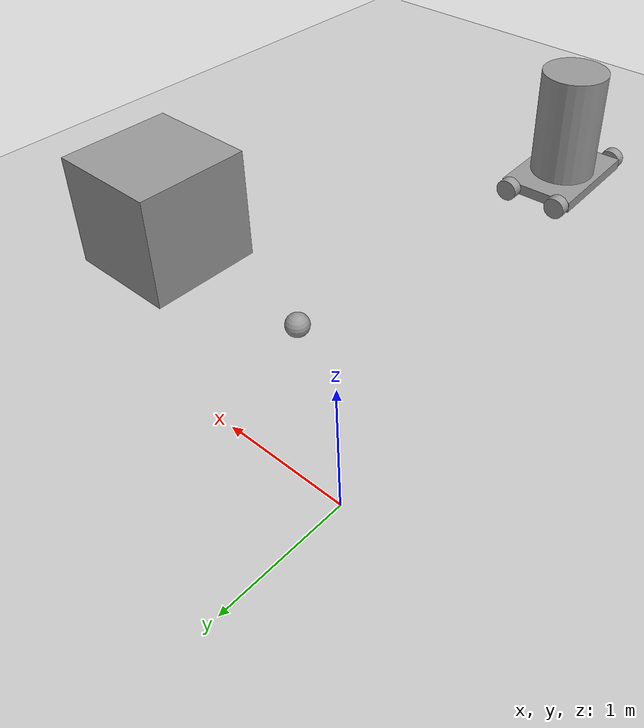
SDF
<sdf version="1.6">
 <world name="default">
  <model name="ground_plane">
   <static>1</static>
   <link name="link">
    <collision name="collision">
     <geometry><plane><normal>0 0 1</normal><size>100 100</size></plane></geometry>
     <surface>
      <contact><collide_bitmask>65535</collide_bitmask></contact>
      <friction><ode><mu>100</mu><mu2>50</mu2></ode></friction>
     </surface>
    </collision>
    <visual name="visual">
     <cast_shadows>0</cast_shadows>
     <geometry><plane><normal>0 0 1</normal><size>100 100</size></plane></geometry>
     <material>
      <script><uri>file://media/materials/scripts/gazebo.material</uri><name>Gazebo/Grey</name></script>
     </material>
    </visual>
   </link>
  </model>
  <model name="project_robot_clone">
   <link name="link_2">
    <pose>0 0 0.1 0 -0 0</pose>
    <inertial>
     <mass>1</mass>
     <inertia>
      <ixx>0.166667</ixx>
      <ixy>0</ixy>
      <ixz>0</ixz>
      <iyy>0.166667</iyy>
      <iyz>0</iyz>
      <izz>0.166667</izz>
     </inertia>
    </inertial>
    <visual name="visual">
     <geometry><box><size>0.7 1 0.1</size></box></geometry>
     <material>
      <lighting>1</lighting>
      <script><uri>file://media/materials/scripts/gazebo.material</uri><name>Gazebo/Grey</name></script>
      <shader type="pixel"><normal_map>__default__</normal_map></shader>
      <ambient>0.3 0.3 0.3 1</ambient>
      <diffuse>0.7 0.7 0.7 1</diffuse>
      <specular>0.01 0.01 0.01 1</specular>
      <emissive>0 0 0 1</emissive>
     </material>
    </visual>
    <collision name="collision">
     <geometry><box><size>0.7 1 0.1</size></box></geometry>
     <surface>
      <friction>
       <ode><mu>1</mu><mu2>1</mu2><fdir1>0 0 0</fdir1><slip1>0</slip1><slip2>0</slip2></ode>
       <torsional>
        <coefficient>1</coefficient>
        <patch_radius>0</patch_radius>
        <surface_radius>0</surface_radius>
        <use_patch_radius>1</use_patch_radius>
        <ode><slip>0</slip></ode>
       </torsional>
      </friction>
      <bounce><restitution_coefficient>0</restitution_coefficient><threshold>1e+06</threshold></bounce>
      <contact>
       <collide_without_contact>0</collide_without_contact>
       <collide_without_contact_bitmask>1</collide_without_contact_bitmask>
       <collide_bitmask>1</collide_bitmask>
       <ode>
        <soft_cfm>0</soft_cfm>
        <soft_erp>0.2</soft_erp>
        <kp>1e+13</kp>
        <kd>1</kd>
        <max_vel>0.01</max_vel>
        <min_depth>0</min_depth>
       </ode>
       <bullet>
        <split_impulse>1</split_impulse>
        <split_impulse_penetration_threshold>-0.01</split_impulse_penetration_threshold>
        <soft_cfm>0</soft_cfm>
        <soft_erp>0.2</soft_erp>
        <kp>1e+13</kp>
        <kd>1</kd>
       </bullet>
      </contact>
     </surface>
    </collision>
   </link>
   <link name="link_0">
    <pose>0 0 0.65 0 -0 0</pose>
    <inertial>
     <mass>1</mass>
     <inertia><ixx>0.145833</ixx><ixy>0</ixy><ixz>0</ixz><iyy>0.145833</iyy><iyz>0</iyz><izz>0.125</izz></inertia>
    </inertial>
    <visual name="visual">
     <geometry><cylinder><radius>0.3</radius><length>1</length></cylinder></geometry>
     <material>
      <lighting>1</lighting>
      <script><uri>file://media/materials/scripts/gazebo.material</uri><name>Gazebo/Grey</name></script>
      <shader type="pixel"><normal_map>__default__</normal_map></shader>
      <ambient>0.3 0.3 0.3 1</ambient>
      <diffuse>0.7 0.7 0.7 1</diffuse>
      <specular>0.01 0.01 0.01 1</specular>
      <emissive>0 0 0 1</emissive>
     </material>
    </visual>
    <collision name="collision">
     <geometry><cylinder><radius>0.3</radius><length>1</length></cylinder></geometry>
     <surface>
      <friction>
       <ode><mu>1</mu><mu2>1</mu2><fdir1>0 0 0</fdir1><slip1>0</slip1><slip2>0</slip2></ode>
       <torsional>
        <coefficient>1</coefficient>
        <patch_radius>0</patch_radius>
        <surface_radius>0</surface_radius>
        <use_patch_radius>1</use_patch_radius>
        <ode><slip>0</slip></ode>
       </torsional>
      </friction>
      <bounce><restitution_coefficient>0</restitution_coefficient><threshold>1e+06</threshold></bounce>
      <contact>
       <collide_without_contact>0</collide_without_contact>
       <collide_without_contact_bitmask>1</collide_without_contact_bitmask>
       <collide_bitmask>1</collide_bitmask>
       <ode>
        <soft_cfm>0</soft_cfm>
        <soft_erp>0.2</soft_erp>
        <kp>1e+13</kp>
        <kd>1</kd>
        <max_vel>0.01</max_vel>
        <min_depth>0</min_depth>
       </ode>
       <bullet>
        <split_impulse>1</split_impulse>
        <split_impulse_penetration_threshold>-0.01</split_impulse_penetration_threshold>
        <soft_cfm>0</soft_cfm>
        <soft_erp>0.2</soft_erp>
        <kp>1e+13</kp>
        <kd>1</kd>
       </bullet>
      </contact>
     </surface>
    </collision>
   </link>
   <link name="link_3">
    <pose>-0.25 -0.550019 0.1 1.5707 -0 0</pose>
    <inertial>
     <mass>1</mass>
     <inertia><ixx>0.145833</ixx><ixy>0</ixy><ixz>0</ixz><iyy>0.145833</iyy><iyz>0</iyz><izz>0.125</izz></inertia>
    </inertial>
    <visual name="visual">
     <geometry><cylinder><radius>0.1</radius><length>0.1</length></cylinder></geometry>
     <material>
      <lighting>1</lighting>
      <script><uri>file://media/materials/scripts/gazebo.material</uri><name>Gazebo/Grey</name></script>
      <shader type="pixel"><normal_map>__default__</normal_map></shader>
      <ambient>0.3 0.3 0.3 1</ambient>
      <diffuse>0.7 0.7 0.7 1</diffuse>
      <specular>0.01 0.01 0.01 1</specular>
      <emissive>0 0 0 1</emissive>
     </material>
    </visual>
    <collision name="collision">
     <geometry><cylinder><radius>0.1</radius><length>0.1</length></cylinder></geometry>
     <surface>
      <friction>
       <ode><mu>1</mu><mu2>1</mu2><fdir1>0 0 0</fdir1><slip1>0</slip1><slip2>0</slip2></ode>
       <torsional>
        <coefficient>1</coefficient>
        <patch_radius>0</patch_radius>
        <surface_radius>0</surface_radius>
        <use_patch_radius>1</use_patch_radius>
        <ode><slip>0</slip></ode>
       </torsional>
      </friction>
      <bounce><restitution_coefficient>0</restitution_coefficient><threshold>1e+06</threshold></bounce>
      <contact>
       <collide_without_contact>0</collide_without_contact>
       <collide_without_contact_bitmask>1</collide_without_contact_bitmask>
       <collide_bitmask>1</collide_bitmask>
       <ode>
        <soft_cfm>0</soft_cfm>
        <soft_erp>0.2</soft_erp>
        <kp>1e+13</kp>
        <kd>1</kd>
        <max_vel>0.01</max_vel>
        <min_depth>0</min_depth>
       </ode>
       <bullet>
        <split_impulse>1</split_impulse>
        <split_impulse_penetration_threshold>-0.01</split_impulse_penetration_threshold>
        <soft_cfm>0</soft_cfm>
        <soft_erp>0.2</soft_erp>
        <kp>1e+13</kp>
        <kd>1</kd>
       </bullet>
      </contact>
     </surface>
    </collision>
   </link>
   <link name="link_3_clone">
    <pose>-0.25 0.55002 0.1 1.5707 -0 0</pose>
    <inertial>
     <mass>1</mass>
     <inertia><ixx>0.145833</ixx><ixy>0</ixy><ixz>0</ixz><iyy>0.145833</iyy><iyz>0</iyz><izz>0.125</izz></inertia>
    </inertial>
    <visual name="visual">
     <geometry><cylinder><radius>0.1</radius><length>0.1</length></cylinder></geometry>
     <material>
      <lighting>1</lighting>
      <script><uri>file://media/materials/scripts/gazebo.material</uri><name>Gazebo/Grey</name></script>
      <shader type="pixel"><normal_map>__default__</normal_map></shader>
      <ambient>0.3 0.3 0.3 1</ambient>
      <diffuse>0.7 0.7 0.7 1</diffuse>
      <specular>0.01 0.01 0.01 1</specular>
      <emissive>0 0 0 1</emissive>
     </material>
    </visual>
    <collision name="collision">
     <geometry><cylinder><radius>0.1</radius><length>0.1</length></cylinder></geometry>
     <surface>
      <friction>
       <ode><mu>1</mu><mu2>1</mu2><fdir1>0 0 0</fdir1><slip1>0</slip1><slip2>0</slip2></ode>
       <torsional>
        <coefficient>1</coefficient>
        <patch_radius>0</patch_radius>
        <surface_radius>0</surface_radius>
        <use_patch_radius>1</use_patch_radius>
        <ode><slip>0</slip></ode>
       </torsional>
      </friction>
      <bounce><restitution_coefficient>0</restitution_coefficient><threshold>1e+06</threshold></bounce>
      <contact>
       <collide_without_contact>0</collide_without_contact>
       <collide_without_contact_bitmask>1</collide_without_contact_bitmask>
       <collide_bitmask>1</collide_bitmask>
       <ode>
        <soft_cfm>0</soft_cfm>
        <soft_erp>0.2</soft_erp>
        <kp>1e+13</kp>
        <kd>1</kd>
        <max_vel>0.01</max_vel>
        <min_depth>0</min_depth>
       </ode>
       <bullet>
        <split_impulse>1</split_impulse>
        <split_impulse_penetration_threshold>-0.01</split_impulse_penetration_threshold>
        <soft_cfm>0</soft_cfm>
        <soft_erp>0.2</soft_erp>
        <kp>1e+13</kp>
        <kd>1</kd>
       </bullet>
      </contact>
     </surface>
    </collision>
   </link>
   <link name="link_3_clone_0">
    <pose>0.25 -0.55001 0.1 1.5707 -0 0</pose>
    <inertial>
     <mass>1</mass>
     <inertia><ixx>0.145833</ixx><ixy>0</ixy><ixz>0</ixz><iyy>0.145833</iyy><iyz>0</iyz><izz>0.125</izz></inertia>
    </inertial>
    <visual name="visual">
     <geometry><cylinder><radius>0.1</radius><length>0.1</length></cylinder></geometry>
     <material>
      <lighting>1</lighting>
      <script><uri>file://media/materials/scripts/gazebo.material</uri><name>Gazebo/Grey</name></script>
      <shader type="pixel"><normal_map>__default__</normal_map></shader>
      <ambient>0.3 0.3 0.3 1</ambient>
      <diffuse>0.7 0.7 0.7 1</diffuse>
      <specular>0.01 0.01 0.01 1</specular>
      <emissive>0 0 0 1</emissive>
     </material>
    </visual>
    <collision name="collision">
     <geometry><cylinder><radius>0.1</radius><length>0.1</length></cylinder></geometry>
     <surface>
      <friction>
       <ode><mu>1</mu><mu2>1</mu2><fdir1>0 0 0</fdir1><slip1>0</slip1><slip2>0</slip2></ode>
       <torsional>
        <coefficient>1</coefficient>
        <patch_radius>0</patch_radius>
        <surface_radius>0</surface_radius>
        <use_patch_radius>1</use_patch_radius>
        <ode><slip>0</slip></ode>
       </torsional>
      </friction>
      <bounce><restitution_coefficient>0</restitution_coefficient><threshold>1e+06</threshold></bounce>
      <contact>
       <collide_without_contact>0</collide_without_contact>
       <collide_without_contact_bitmask>1</collide_without_contact_bitmask>
       <collide_bitmask>1</collide_bitmask>
       <ode>
        <soft_cfm>0</soft_cfm>
        <soft_erp>0.2</soft_erp>
        <kp>1e+13</kp>
        <kd>1</kd>
        <max_vel>0.01</max_vel>
        <min_depth>0</min_depth>
       </ode>
       <bullet>
        <split_impulse>1</split_impulse>
        <split_impulse_penetration_threshold>-0.01</split_impulse_penetration_threshold>
        <soft_cfm>0</soft_cfm>
        <soft_erp>0.2</soft_erp>
        <kp>1e+13</kp>
        <kd>1</kd>
       </bullet>
      </contact>
     </surface>
    </collision>
   </link>
   <link name="link_3_clone_clone">
    <pose>0.25 0.55001 0.1 1.5707 -0 0</pose>
    <inertial>
     <mass>1</mass>
     <inertia><ixx>0.145833</ixx><ixy>0</ixy><ixz>0</ixz><iyy>0.145833</iyy><iyz>0</iyz><izz>0.125</izz></inertia>
    </inertial>
    <visual name="visual">
     <geometry><cylinder><radius>0.1</radius><length>0.1</length></cylinder></geometry>
     <material>
      <lighting>1</lighting>
      <script><uri>file://media/materials/scripts/gazebo.material</uri><name>Gazebo/Grey</name></script>
      <shader type="pixel"><normal_map>__default__</normal_map></shader>
      <ambient>0.3 0.3 0.3 1</ambient>
      <diffuse>0.7 0.7 0.7 1</diffuse>
      <specular>0.01 0.01 0.01 1</specular>
      <emissive>0 0 0 1</emissive>
     </material>
    </visual>
    <collision name="collision">
     <geometry><cylinder><radius>0.1</radius><length>0.1</length></cylinder></geometry>
     <surface>
      <friction>
       <ode><mu>1</mu><mu2>1</mu2><fdir1>0 0 0</fdir1><slip1>0</slip1><slip2>0</slip2></ode>
       <torsional>
        <coefficient>1</coefficient>
        <patch_radius>0</patch_radius>
        <surface_radius>0</surface_radius>
        <use_patch_radius>1</use_patch_radius>
        <ode><slip>0</slip></ode>
       </torsional>
      </friction>
      <bounce><restitution_coefficient>0</restitution_coefficient><threshold>1e+06</threshold></bounce>
      <contact>
       <collide_without_contact>0</collide_without_contact>
       <collide_without_contact_bitmask>1</collide_without_contact_bitmask>
       <collide_bitmask>1</collide_bitmask>
       <ode>
        <soft_cfm>0</soft_cfm>
        <soft_erp>0.2</soft_erp>
        <kp>1e+13</kp>
        <kd>1</kd>
        <max_vel>0.01</max_vel>
        <min_depth>0</min_depth>
       </ode>
       <bullet>
        <split_impulse>1</split_impulse>
        <split_impulse_penetration_threshold>-0.01</split_impulse_penetration_threshold>
        <soft_cfm>0</soft_cfm>
        <soft_erp>0.2</soft_erp>
        <kp>1e+13</kp>
        <kd>1</kd>
       </bullet>
      </contact>
     </surface>
    </collision>
   </link>
   <joint name="link_2_JOINT_0_0" type="revolute">
    <parent>link_2</parent>
    <child>link_3_clone_0</child>
    <axis>
     <xyz>0 0 1</xyz>
     <use_parent_model_frame>0</use_parent_model_frame>
     <limit>
      <lower>-1.79769e+308</lower>
      <upper>1.79769e+308</upper>
      <effort>-1</effort>
      <velocity>-1</velocity>
     </limit>
     <dynamics>
      <spring_reference>0</spring_reference>
      <spring_stiffness>0</spring_stiffness>
      <damping>0</damping>
     </dynamics>
    </axis>
    <physics>
     <ode><limit><cfm>0</cfm><erp>0.2</erp></limit><suspension><cfm>0</cfm><erp>0.2</erp></suspension></ode>
    </physics>
   </joint>
   <joint name="link_2_JOINT_0" type="revolute">
    <parent>link_2</parent>
    <child>link_3</child>
    <axis>
     <xyz>0 0 1</xyz>
     <use_parent_model_frame>0</use_parent_model_frame>
     <limit>
      <lower>-1.79769e+308</lower>
      <upper>1.79769e+308</upper>
      <effort>-1</effort>
      <velocity>-1</velocity>
     </limit>
     <dynamics>
      <spring_reference>0</spring_reference>
      <spring_stiffness>0</spring_stiffness>
      <damping>0</damping>
      <friction>0</friction>
     </dynamics>
    </axis>
    <physics>
     <ode><limit><cfm>0</cfm><erp>0.2</erp></limit><suspension><cfm>0</cfm><erp>0.2</erp></suspension></ode>
    </physics>
   </joint>
   <joint name="link_2_JOINT_1_0" type="revolute">
    <parent>link_2</parent>
    <child>link_3_clone_clone</child>
    <axis>
     <xyz>0 0 1</xyz>
     <use_parent_model_frame>0</use_parent_model_frame>
     <limit>
      <lower>-1.79769e+308</lower>
      <upper>1.79769e+308</upper>
      <effort>-1</effort>
      <velocity>-1</velocity>
     </limit>
     <dynamics>
      <spring_reference>0</spring_reference>
      <spring_stiffness>0</spring_stiffness>
      <damping>0</damping>
     </dynamics>
    </axis>
    <physics>
     <ode><limit><cfm>0</cfm><erp>0.2</erp></limit><suspension><cfm>0</cfm><erp>0.2</erp></suspension></ode>
    </physics>
   </joint>
   <joint name="link_2_JOINT_1" type="revolute">
    <parent>link_2</parent>
    <child>link_3_clone</child>
    <axis>
     <xyz>0 0 1</xyz>
     <use_parent_model_frame>0</use_parent_model_frame>
     <limit>
      <lower>-1.79769e+308</lower>
      <upper>1.79769e+308</upper>
      <effort>-1</effort>
      <velocity>-1</velocity>
     </limit>
     <dynamics>
      <spring_reference>0</spring_reference>
      <spring_stiffness>0</spring_stiffness>
      <damping>0</damping>
      <friction>0</friction>
     </dynamics>
    </axis>
    <physics>
     <ode><limit><cfm>0</cfm><erp>0.2</erp></limit><suspension><cfm>0</cfm><erp>0.2</erp></suspension></ode>
    </physics>
   </joint>
   <joint name="link_2_JOINT_2" type="fixed">
    <parent>link_2</parent>
    <child>link_0</child>
    <pose>0 0 0 -0.01 0 0</pose>
    <physics>
     <ode><limit><cfm>0</cfm><erp>0.2</erp></limit><suspension><cfm>0</cfm><erp>0.2</erp></suspension></ode>
    </physics>
   </joint>
   <static>0</static>
   <pose>0.984683 -4.20793 -1e-06 8e-06 2e-06 0.04077</pose>
  </model>
  <model name="my_ball">
   <link name="link_0">
    <pose>0 0 0.1 0 -0 0</pose>
    <inertial>
     <mass>1</mass>
     <inertia><ixx>0.1</ixx><ixy>0</ixy><ixz>0</ixz><iyy>0.1</iyy><iyz>0</iyz><izz>0.1</izz></inertia>
    </inertial>
    <visual name="visual">
     <geometry><sphere><radius>0.1</radius></sphere></geometry>
     <material>
      <lighting>1</lighting>
      <script><uri>file://media/materials/scripts/gazebo.material</uri><name>Gazebo/Grey</name></script>
      <ambient>1 1 1 1</ambient>
      <diffuse>1 1 1 1</diffuse>
      <specular>1 1 1 1</specular>
      <emissive>1 1 1 1</emissive>
      <shader type="vertex"><normal_map>__default__</normal_map></shader>
     </material>
    </visual>
    <collision name="collision">
     <geometry><sphere><radius>0.1</radius></sphere></geometry>
     <surface>
      <friction>
       <ode><mu>1</mu><mu2>1</mu2><fdir1>0 0 0</fdir1><slip1>0</slip1><slip2>0</slip2></ode>
       <torsional>
        <coefficient>1</coefficient>
        <patch_radius>0</patch_radius>
        <surface_radius>0</surface_radius>
        <use_patch_radius>1</use_patch_radius>
        <ode><slip>0</slip></ode>
       </torsional>
      </friction>
      <bounce><restitution_coefficient>0</restitution_coefficient><threshold>1e+06</threshold></bounce>
      <contact>
       <collide_without_contact>0</collide_without_contact>
       <collide_without_contact_bitmask>1</collide_without_contact_bitmask>
       <collide_bitmask>1</collide_bitmask>
       <ode>
        <soft_cfm>0</soft_cfm>
        <soft_erp>0.2</soft_erp>
        <kp>1e+13</kp>
        <kd>1</kd>
        <max_vel>0.01</max_vel>
        <min_depth>0</min_depth>
       </ode>
       <bullet>
        <split_impulse>1</split_impulse>
        <split_impulse_penetration_threshold>-0.01</split_impulse_penetration_threshold>
        <soft_cfm>0</soft_cfm>
        <soft_erp>0.2</soft_erp>
        <kp>1e+13</kp>
        <kd>1</kd>
       </bullet>
      </contact>
     </surface>
    </collision>
   </link>
   <static>0</static>
   <pose>1.32892 -0.968381 0 0 -0 0</pose>
  </model>
  <model name="unit_box_4">
   <pose>2.87873 -0.969347 0.499995 0 1e-05 0</pose>
   <link name="link">
    <inertial>
     <mass>1</mass>
     <inertia>
      <ixx>0.166667</ixx>
      <ixy>0</ixy>
      <ixz>0</ixz>
      <iyy>0.166667</iyy>
      <iyz>0</iyz>
      <izz>0.166667</izz>
     </inertia>
    </inertial>
    <collision name="collision"><geometry><box><size>1 1 1</size></box></geometry></collision>
    <visual name="visual">
     <geometry><box><size>1 1 1</size></box></geometry>
     <material>
      <script><name>Gazebo/Grey</name><uri>file://media/materials/scripts/gazebo.material</uri></script>
     </material>
    </visual>
   </link>
  </model>
 </world>
</sdf>
